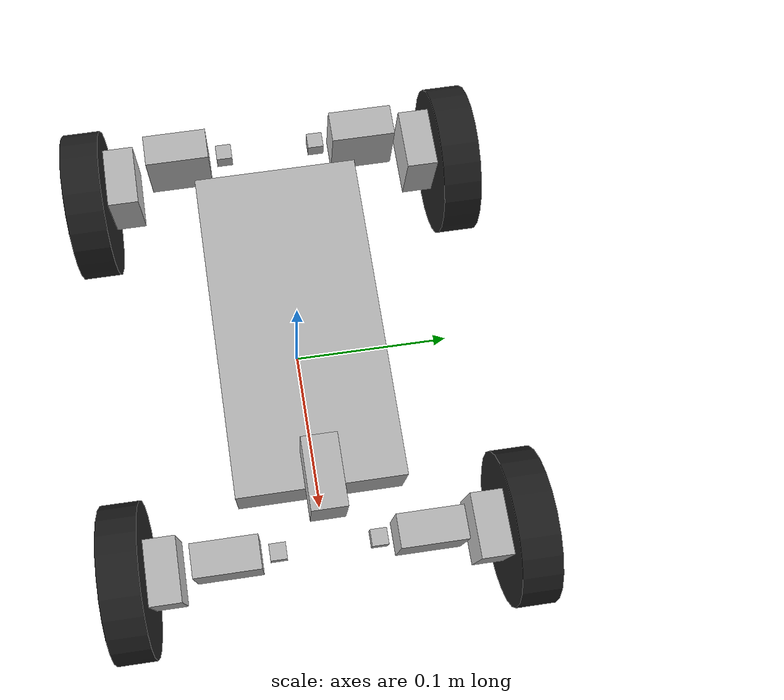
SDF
<?xml version="1.0"?>
<sdf version="1.5">
  <model name="fourlegs">
    <static>false</static>
    <self_collide>false</self_collide>
    <link name="BODY">
      <pose>0 0 0.06 0 0 0</pose>
      <inertial>
        <mass>2</mass>
        <inertia>
          <ixx>0.00194</ixx>
          <ixy>0</ixy>
          <ixz>0</ixz>
          <iyy>0.00694</iyy>
          <iyz>0</iyz>
          <izz>0.00834</izz>
        </inertia>
      </inertial>
      <collision name="collision">
        <geometry>
          <box>
            <size>0.2 0.1 0.04</size>
          </box>
        </geometry>
        <surface>
          <friction>
            <ode>
              <mu>1</mu>
              <mu2>1</mu2>
              <slip1>0</slip1>
              <slip2>0</slip2>
            </ode>
          </friction>
        </surface>
      </collision>
      <visual name="visual">
        <geometry>
          <box>
            <size>0.2 0.1 0.04</size>
          </box>
        </geometry>
      </visual>
    </link>
    <link name="NECK">
      <pose>0.1 0 0.11 0 0 0</pose>
      <inertial>
        <mass>0.2</mass>
        <inertia>
          <ixx>0.000034133</ixx>
          <ixy>0</ixy>
          <ixz>0</ixz>
          <iyy>0.000054613</iyy>
          <iyz>0</iyz>
          <izz>0.000034133</izz>
        </inertia>
      </inertial>
      <collision name="collision">
        <geometry>
          <box>
            <size>0.04 0.02 0.04</size>
          </box>
        </geometry>
        <surface>
          <friction>
            <ode>
              <mu>1</mu>
              <mu2>1</mu2>
              <slip1>0</slip1>
              <slip2>0</slip2>
            </ode>
          </friction>
        </surface>
      </collision>
      <visual name="visual">
        <geometry>
          <box>
            <size>0.04 0.02 0.04</size>
          </box>
        </geometry>
      </visual>
      <sensor type="camera" name="camera">
        <update_rate>20</update_rate>
        <visualize>false</visualize>
        <camera name="camera">
          <horizontal_fov>1.047</horizontal_fov>
          <image>
            <width>320</width>
            <height>240</height>
            <format>R8G8B8</format>
          </image>
          <clip>
            <near>0.1</near>
            <far>100</far>
          </clip>
          <!-- Noise is sampled independently per pixel on each frame.
               That pixel's noise value is added to each of its color
               channels, which at that point lie in the range [0,1]. -->
          <noise>
            <type>gaussian</type>
            <mean>0.0</mean>
            <stddev>0.007</stddev>
          </noise>
        </camera>
      </sensor>
    </link>
    <joint type="revolute" name="J_NECK">
      <pose>-0.02 0 -0.03 0 0 0</pose>
      <child>NECK</child>
      <parent>BODY</parent>
      <axis>
        <xyz>0 0 1</xyz>
        <limit>
          <lower>0</lower>
          <upper>0</upper>
        </limit>
      </axis>
    </joint>
    <link name="FR0">
      <pose>0.13 -0.03 0.05 0 0 0</pose>
      <inertial>
        <mass>0.01</mass>
        <inertia>
          <ixx>0.000000175</ixx>
          <ixy>0</ixy>
          <ixz>0</ixz>
          <iyy>0.000000175</iyy>
          <iyz>0</iyz>
          <izz>0.000000175</izz>
        </inertia>
      </inertial>
      <collision name="collision">
        <geometry>
          <box>
            <size>0.01 0.01 0.01</size>
          </box>
        </geometry>
        <surface>
          <friction>
            <ode>
              <mu>1</mu>
              <mu2>1</mu2>
              <slip1>0</slip1>
              <slip2>0</slip2>
            </ode>
          </friction>
        </surface>
      </collision>
      <visual name="visual">
        <geometry>
          <box>
            <size>0.01 0.01 0.01</size>
          </box>
        </geometry>
      </visual>
    </link>
    <joint type="revolute" name="J_FR_B20">
      <pose>0 0 0 0 0 0</pose>
      <child>FR0</child>
      <parent>BODY</parent>
      <axis>
        <xyz>-1 0 0</xyz>
      </axis>
    </joint>
    <link name="FR1">
      <pose>0.13 -0.06 0.05 0 0 0</pose>
      <inertial>
        <mass>0.2</mass>
        <inertia>
          <ixx>0.000054613</ixx>
          <ixy>0</ixy>
          <ixz>0</ixz>
          <iyy>0.000034133</iyy>
          <iyz>0</iyz>
          <izz>0.000034133</izz>
        </inertia>
      </inertial>
      <collision name="collision">
        <geometry>
          <box>
            <size>0.02 0.04 0.04</size>
          </box>
        </geometry>
        <surface>
          <friction>
            <ode>
              <mu>1</mu>
              <mu2>1</mu2>
              <slip1>0</slip1>
              <slip2>0</slip2>
            </ode>
          </friction>
        </surface>
      </collision>
      <visual name="visual">
        <geometry>
          <box>
            <size>0.02 0.04 0.04</size>
          </box>
        </geometry>
      </visual>
    </link>
    <joint type="revolute" name="J_FR_021">
      <pose>0 0.03 0 0 0 0</pose>
      <child>FR1</child>
      <parent>FR0</parent>
      <axis>
        <xyz>0 0 1</xyz>
      </axis>
    </joint>
    <link name="FR2">
      <pose>0.13 -0.1 0.02 0 0 0</pose>
      <inertial>
        <mass>0.2</mass>
        <inertia>
          <ixx>0.000034133</ixx>
          <ixy>0</ixy>
          <ixz>0</ixz>
          <iyy>0.000054613</iyy>
          <iyz>0</iyz>
          <izz>0.000034133</izz>
        </inertia>
      </inertial>
      <collision name="collision">
        <geometry>
          <box>
            <size>0.04 0.02 0.04</size>
          </box>
        </geometry>
        <surface>
          <friction>
            <ode>
              <mu>1</mu>
              <mu2>1</mu2>
              <slip1>0</slip1>
              <slip2>0</slip2>
            </ode>
          </friction>
        </surface>
      </collision>
      <visual name="visual">
        <geometry>
          <box>
            <size>0.04 0.02 0.04</size>
          </box>
        </geometry>
      </visual>
      <collision name="collision_sphere">
        <pose>0 0 -0.02 0 0 0</pose>
        <geometry>
          <sphere>
            <radius>0.01</radius>
          </sphere>
        </geometry>
        <surface>
          <friction>
            <ode>
              <mu>1</mu>
              <mu2>1</mu2>
              <slip1>0</slip1>
              <slip2>0</slip2>
            </ode>
          </friction>
        </surface>
      </collision>
      <visual name="visual_sphere">
        <pose>0 0 -0.02 0 0 0</pose>
        <geometry>
          <sphere>
            <radius>0.01</radius>
          </sphere>
        </geometry>
        <material>
          <ambient>0 0 0 1</ambient>
          <diffuse>0 0 0 1</diffuse>
          <specular>0.1 0.1 0.1 1</specular>
          <emissive>0 0 0 0</emissive>
        </material>
      </visual>
    </link>
    <joint type="revolute" name="J_FR_122">
      <pose>0 0 0.03 0 0 0</pose>
      <child>FR2</child>
      <parent>FR1</parent>
      <axis>
        <xyz>1 0 0</xyz>
      </axis>
    </joint>
    <link name="FL0">
      <pose>0.13 0.03 0.05 0 0 0</pose>
      <inertial>
        <mass>0.01</mass>
        <inertia>
          <ixx>0.000000175</ixx>
          <ixy>0</ixy>
          <ixz>0</ixz>
          <iyy>0.000000175</iyy>
          <iyz>0</iyz>
          <izz>0.000000175</izz>
        </inertia>
      </inertial>
      <collision name="collision">
        <geometry>
          <box>
            <size>0.01 0.01 0.01</size>
          </box>
        </geometry>
        <surface>
          <friction>
            <ode>
              <mu>1</mu>
              <mu2>1</mu2>
              <slip1>0</slip1>
              <slip2>0</slip2>
            </ode>
          </friction>
        </surface>
      </collision>
      <visual name="visual">
        <geometry>
          <box>
            <size>0.01 0.01 0.01</size>
          </box>
        </geometry>
      </visual>
    </link>
    <joint type="revolute" name="J_FL_B20">
      <pose>0 0 0 0 0 0</pose>
      <child>FL0</child>
      <parent>BODY</parent>
      <axis>
        <xyz>1 0 0</xyz>
      </axis>
    </joint>
    <link name="FL1">
      <pose>0.13 0.06 0.05 0 0 0</pose>
      <inertial>
        <mass>0.2</mass>
        <inertia>
          <ixx>0.000054613</ixx>
          <ixy>0</ixy>
          <ixz>0</ixz>
          <iyy>0.000034133</iyy>
          <iyz>0</iyz>
          <izz>0.000034133</izz>
        </inertia>
      </inertial>
      <collision name="collision">
        <geometry>
          <box>
            <size>0.02 0.04 0.04</size>
          </box>
        </geometry>
        <surface>
          <friction>
            <ode>
              <mu>1</mu>
              <mu2>1</mu2>
              <slip1>0</slip1>
              <slip2>0</slip2>
            </ode>
          </friction>
        </surface>
      </collision>
      <visual name="visual">
        <geometry>
          <box>
            <size>0.02 0.04 0.04</size>
          </box>
        </geometry>
      </visual>
    </link>
    <joint type="revolute" name="J_FL_021">
      <pose>0 -0.03 0 0 0 0</pose>
      <child>FL1</child>
      <parent>FL0</parent>
      <axis>
        <xyz>0 0 -1</xyz>
      </axis>
    </joint>
    <link name="FL2">
      <pose>0.13 0.1 0.02 0 0 0</pose>
      <inertial>
        <mass>0.2</mass>
        <inertia>
          <ixx>0.000034133</ixx>
          <ixy>0</ixy>
          <ixz>0</ixz>
          <iyy>0.000054613</iyy>
          <iyz>0</iyz>
          <izz>0.000034133</izz>
        </inertia>
      </inertial>
      <collision name="collision">
        <geometry>
          <box>
            <size>0.04 0.02 0.04</size>
          </box>
        </geometry>
        <surface>
          <friction>
            <ode>
              <mu>1</mu>
              <mu2>1</mu2>
              <slip1>0</slip1>
              <slip2>0</slip2>
            </ode>
          </friction>
        </surface>
      </collision>
      <visual name="visual">
        <geometry>
          <box>
            <size>0.04 0.02 0.04</size>
          </box>
        </geometry>
      </visual>
      <collision name="collision_sphere">
        <pose>0 0 -0.02 0 0 0</pose>
        <geometry>
          <sphere>
            <radius>0.01</radius>
          </sphere>
        </geometry>
        <surface>
          <friction>
            <ode>
              <mu>1</mu>
              <mu2>1</mu2>
              <slip1>0</slip1>
              <slip2>0</slip2>
            </ode>
          </friction>
        </surface>
      </collision>
      <visual name="visual_sphere">
        <pose>0 0 -0.02 0 0 0</pose>
        <geometry>
          <sphere>
            <radius>0.01</radius>
          </sphere>
        </geometry>
        <material>
          <ambient>0 0 0 1</ambient>
          <diffuse>0 0 0 1</diffuse>
          <specular>0.1 0.1 0.1 1</specular>
          <emissive>0 0 0 0</emissive>
        </material>
      </visual>
    </link>
    <joint type="revolute" name="J_FL_122">
      <pose>0 0 0.03 0 0 0</pose>
      <child>FL2</child>
      <parent>FL1</parent>
      <axis>
        <xyz>-1 0 0</xyz>
      </axis>
    </joint>
    <link name="RR0">
      <pose>-0.13 -0.03 0.05 0 0 0</pose>
      <inertial>
        <mass>0.01</mass>
        <inertia>
          <ixx>0.000000175</ixx>
          <ixy>0</ixy>
          <ixz>0</ixz>
          <iyy>0.000000175</iyy>
          <iyz>0</iyz>
          <izz>0.000000175</izz>
        </inertia>
      </inertial>
      <collision name="collision">
        <geometry>
          <box>
            <size>0.01 0.01 0.01</size>
          </box>
        </geometry>
        <surface>
          <friction>
            <ode>
              <mu>1</mu>
              <mu2>1</mu2>
              <slip1>0</slip1>
              <slip2>0</slip2>
            </ode>
          </friction>
        </surface>
      </collision>
      <visual name="visual">
        <geometry>
          <box>
            <size>0.01 0.01 0.01</size>
          </box>
        </geometry>
      </visual>
    </link>
    <joint type="revolute" name="J_RR_B20">
      <pose>0 0 0 0 0 0</pose>
      <child>RR0</child>
      <parent>BODY</parent>
      <axis>
        <xyz>-1 0 0</xyz>
      </axis>
    </joint>
    <link name="RR1">
      <pose>-0.13 -0.06 0.05 0 0 0</pose>
      <inertial>
        <mass>0.2</mass>
        <inertia>
          <ixx>0.000054613</ixx>
          <ixy>0</ixy>
          <ixz>0</ixz>
          <iyy>0.000034133</iyy>
          <iyz>0</iyz>
          <izz>0.000034133</izz>
        </inertia>
      </inertial>
      <collision name="collision">
        <geometry>
          <box>
            <size>0.02 0.04 0.04</size>
          </box>
        </geometry>
        <surface>
          <friction>
            <ode>
              <mu>1</mu>
              <mu2>1</mu2>
              <slip1>0</slip1>
              <slip2>0</slip2>
            </ode>
          </friction>
        </surface>
      </collision>
      <visual name="visual">
        <geometry>
          <box>
            <size>0.02 0.04 0.04</size>
          </box>
        </geometry>
      </visual>
    </link>
    <joint type="revolute" name="J_RR_021">
      <pose>0 0.03 0 0 0 0</pose>
      <child>RR1</child>
      <parent>RR0</parent>
      <axis>
        <xyz>0 0 -1</xyz>
      </axis>
    </joint>
    <link name="RR2">
      <pose>-0.13 -0.1 0.02 0 0 0</pose>
      <inertial>
        <mass>0.2</mass>
        <inertia>
          <ixx>0.000034133</ixx>
          <ixy>0</ixy>
          <ixz>0</ixz>
          <iyy>0.000054613</iyy>
          <iyz>0</iyz>
          <izz>0.000034133</izz>
        </inertia>
      </inertial>
      <collision name="collision">
        <geometry>
          <box>
            <size>0.04 0.02 0.04</size>
          </box>
        </geometry>
        <surface>
          <friction>
            <ode>
              <mu>1</mu>
              <mu2>1</mu2>
              <slip1>0</slip1>
              <slip2>0</slip2>
            </ode>
          </friction>
        </surface>
      </collision>
      <visual name="visual">
        <geometry>
          <box>
            <size>0.04 0.02 0.04</size>
          </box>
        </geometry>
      </visual>
      <collision name="collision_sphere">
        <pose>0 0 -0.02 0 0 0</pose>
        <geometry>
          <sphere>
            <radius>0.01</radius>
          </sphere>
        </geometry>
        <surface>
          <friction>
            <ode>
              <mu>1</mu>
              <mu2>1</mu2>
              <slip1>0</slip1>
              <slip2>0</slip2>
            </ode>
          </friction>
        </surface>
      </collision>
      <visual name="visual_sphere">
        <pose>0 0 -0.02 0 0 0</pose>
        <geometry>
          <sphere>
            <radius>0.01</radius>
          </sphere>
        </geometry>
        <material>
          <ambient>0 0 0 1</ambient>
          <diffuse>0 0 0 1</diffuse>
          <specular>0.1 0.1 0.1 1</specular>
          <emissive>0 0 0 0</emissive>
        </material>
      </visual>
    </link>
    <joint type="revolute" name="J_RR_122">
      <pose>0 0 0.03 0 0 0</pose>
      <child>RR2</child>
      <parent>RR1</parent>
      <axis>
        <xyz>1 0 0</xyz>
      </axis>
    </joint>
    <link name="RL0">
      <pose>-0.13 0.03 0.05 0 0 0</pose>
      <inertial>
        <mass>0.01</mass>
        <inertia>
          <ixx>0.000000175</ixx>
          <ixy>0</ixy>
          <ixz>0</ixz>
          <iyy>0.000000175</iyy>
          <iyz>0</iyz>
          <izz>0.000000175</izz>
        </inertia>
      </inertial>
      <collision name="collision">
        <geometry>
          <box>
            <size>0.01 0.01 0.01</size>
          </box>
        </geometry>
        <surface>
          <friction>
            <ode>
              <mu>1</mu>
              <mu2>1</mu2>
              <slip1>0</slip1>
              <slip2>0</slip2>
            </ode>
          </friction>
        </surface>
      </collision>
      <visual name="visual">
        <geometry>
          <box>
            <size>0.01 0.01 0.01</size>
          </box>
        </geometry>
      </visual>
    </link>
    <joint type="revolute" name="J_RL_B20">
      <pose>0 0 0 0 0 0</pose>
      <child>RL0</child>
      <parent>BODY</parent>
      <axis>
        <xyz>1 0 0</xyz>
      </axis>
    </joint>
    <link name="RL1">
      <pose>-0.13 0.06 0.05 0 0 0</pose>
      <inertial>
        <mass>0.2</mass>
        <inertia>
          <ixx>0.000054613</ixx>
          <ixy>0</ixy>
          <ixz>0</ixz>
          <iyy>0.000034133</iyy>
          <iyz>0</iyz>
          <izz>0.000034133</izz>
        </inertia>
      </inertial>
      <collision name="collision">
        <geometry>
          <box>
            <size>0.02 0.04 0.04</size>
          </box>
        </geometry>
        <surface>
          <friction>
            <ode>
              <mu>1</mu>
              <mu2>1</mu2>
              <slip1>0</slip1>
              <slip2>0</slip2>
            </ode>
          </friction>
        </surface>
      </collision>
      <visual name="visual">
        <geometry>
          <box>
            <size>0.02 0.04 0.04</size>
          </box>
        </geometry>
      </visual>
    </link>
    <joint type="revolute" name="J_RL_021">
      <pose>0 -0.03 0 0 0 0</pose>
      <child>RL1</child>
      <parent>RL0</parent>
      <axis>
        <xyz>0 0 1</xyz>
      </axis>
    </joint>
    <link name="RL2">
      <pose>-0.13 0.1 0.02 0 0 0</pose>
      <inertial>
        <mass>0.2</mass>
        <inertia>
          <ixx>0.000034133</ixx>
          <ixy>0</ixy>
          <ixz>0</ixz>
          <iyy>0.000054613</iyy>
          <iyz>0</iyz>
          <izz>0.000034133</izz>
        </inertia>
      </inertial>
      <collision name="collision">
        <geometry>
          <box>
            <size>0.04 0.02 0.04</size>
          </box>
        </geometry>
        <surface>
          <friction>
            <ode>
              <mu>1</mu>
              <mu2>1</mu2>
              <slip1>0</slip1>
              <slip2>0</slip2>
            </ode>
          </friction>
        </surface>
      </collision>
      <visual name="visual">
        <geometry>
          <box>
            <size>0.04 0.02 0.04</size>
          </box>
        </geometry>
      </visual>
      <collision name="collision_sphere">
        <pose>0 0 -0.02 0 0 0</pose>
        <geometry>
          <sphere>
            <radius>0.01</radius>
          </sphere>
        </geometry>
        <surface>
          <friction>
            <ode>
              <mu>1</mu>
              <mu2>1</mu2>
              <slip1>0</slip1>
              <slip2>0</slip2>
            </ode>
          </friction>
        </surface>
      </collision>
      <visual name="visual_sphere">
        <pose>0 0 -0.02 0 0 0</pose>
        <geometry>
          <sphere>
            <radius>0.01</radius>
          </sphere>
        </geometry>
        <material>
          <ambient>0 0 0 1</ambient>
          <diffuse>0 0 0 1</diffuse>
          <specular>0.1 0.1 0.1 1</specular>
          <emissive>0 0 0 0</emissive>
        </material>
      </visual>
    </link>
    <joint type="revolute" name="J_RL_122">
      <pose>0 0 0.03 0 0 0</pose>
      <child>RL2</child>
      <parent>RL1</parent>
      <axis>
        <xyz>-1 0 0</xyz>
      </axis>
    </joint>
    <link name="front_right_wheel">
      <pose>0.13 -.125 0 -1.5707 0 0</pose>
      <inertial>
        <mass>0.1</mass>
        <inertia>
          <ixx>0.00015621</ixx>
          <ixy>0</ixy>
          <ixz>0</ixz>
          <iyy>0.00015621</iyy>
          <iyz>0</iyz>
          <izz>0.00028839</izz>
        </inertia>
      </inertial>
      <collision name="collision">
        <geometry>
          <cylinder>
            <radius>0.05</radius>
            <length>0.025</length>
          </cylinder>
        </geometry>
        <surface>
          <friction>
            <ode>
              <mu>1.0</mu>
              <mu2>1.0</mu2>
            </ode>
          </friction>
        </surface>
      </collision>
      <visual name="visual">
        <geometry>
          <cylinder>
            <radius>0.05</radius>
            <length>0.025</length>
          </cylinder>
        </geometry>
        <material>
          <script>
            <uri>file://media/materials/scripts/gazebo.material</uri>
            <name>Gazebo/FlatBlack</name>
          </script>
        </material>
      </visual>
    </link>
    <joint type="revolute" name="front_right_wheel_hinge">
      <pose>0 0 0.01 0 0 0</pose>
      <child>front_right_wheel</child>
      <parent>FR2</parent>
      <axis>
        <xyz>0 0 1</xyz>
      </axis>
    </joint>
    <link name="front_left_wheel">
      <pose>0.13 .125 0 -1.5707 0 0</pose>
      <inertial>
        <mass>0.1</mass>
        <inertia>
          <ixx>0.00015621</ixx>
          <ixy>0</ixy>
          <ixz>0</ixz>
          <iyy>0.00015621</iyy>
          <iyz>0</iyz>
          <izz>0.00028839</izz>
        </inertia>
      </inertial>
      <collision name="collision">
        <geometry>
          <cylinder>
            <radius>0.05</radius>
            <length>0.025</length>
          </cylinder>
        </geometry>
        <surface>
          <friction>
            <ode>
              <mu>1.0</mu>
              <mu2>1.0</mu2>
            </ode>
          </friction>
        </surface>
      </collision>
      <visual name="visual">
        <geometry>
          <cylinder>
            <radius>0.05</radius>
            <length>0.025</length>
          </cylinder>
        </geometry>
        <material>
          <script>
            <uri>file://media/materials/scripts/gazebo.material</uri>
            <name>Gazebo/FlatBlack</name>
          </script>
        </material>
      </visual>
    </link>
    <joint type="revolute" name="front_left_wheel_hinge">
      <pose>0 0 0.01 0 0 0</pose>
      <child>front_left_wheel</child>
      <parent>FL2</parent>
      <axis>
        <xyz>0 0 1</xyz>
      </axis>
    </joint>
    <link name="rear_right_wheel">
      <pose>-0.13 -.125 0 -1.5707 0 0</pose>
      <inertial>
        <mass>0.1</mass>
        <inertia>
          <ixx>0.00015621</ixx>
          <ixy>0</ixy>
          <ixz>0</ixz>
          <iyy>0.00015621</iyy>
          <iyz>0</iyz>
          <izz>0.00028839</izz>
        </inertia>
      </inertial>
      <collision name="collision">
        <geometry>
          <cylinder>
            <radius>0.05</radius>
            <length>0.025</length>
          </cylinder>
        </geometry>
        <surface>
          <friction>
            <ode>
              <mu>1.0</mu>
              <mu2>1.0</mu2>
            </ode>
          </friction>
        </surface>
      </collision>
      <visual name="visual">
        <geometry>
          <cylinder>
            <radius>0.05</radius>
            <length>0.025</length>
          </cylinder>
        </geometry>
        <material>
          <script>
            <uri>file://media/materials/scripts/gazebo.material</uri>
            <name>Gazebo/FlatBlack</name>
          </script>
        </material>
      </visual>
    </link>
    <joint type="revolute" name="rear_right_wheel_hinge">
      <pose>0 0 0.01 0 0 0</pose>
      <child>rear_right_wheel</child>
      <parent>RR2</parent>
      <axis>
        <xyz>0 0 1</xyz>
      </axis>
    </joint>
    <link name="rear_left_wheel">
      <pose>-0.13 .125 0 -1.5707 0 0</pose>
      <inertial>
        <mass>0.1</mass>
        <inertia>
          <ixx>0.00015621</ixx>
          <ixy>0</ixy>
          <ixz>0</ixz>
          <iyy>0.00015621</iyy>
          <iyz>0</iyz>
          <izz>0.00028839</izz>
        </inertia>
      </inertial>
      <collision name="collision">
        <geometry>
          <cylinder>
            <radius>0.05</radius>
            <length>0.025</length>
          </cylinder>
        </geometry>
        <surface>
          <friction>
            <ode>
              <mu>1.0</mu>
              <mu2>1.0</mu2>
            </ode>
          </friction>
        </surface>
      </collision>
      <visual name="visual">
        <geometry>
          <cylinder>
            <radius>0.05</radius>
            <length>0.025</length>
          </cylinder>
        </geometry>
        <material>
          <script>
            <uri>file://media/materials/scripts/gazebo.material</uri>
            <name>Gazebo/FlatBlack</name>
          </script>
        </material>
      </visual>
    </link>
    <joint type="revolute" name="rear_left_wheel_hinge">
      <pose>0 0 0.01 0 0 0</pose>
      <child>rear_left_wheel</child>
      <parent>RL2</parent>
      <axis>
        <xyz>0 0 1</xyz>
      </axis>
    </joint>
    <plugin filename="libQuadrupedMotion.so" name="QuadrupedMotion">
      <J_FR_B20>J_FR_B20</J_FR_B20>
      <J_FR_021>J_FR_021</J_FR_021>
      <J_FR_122>J_FR_122</J_FR_122>
      <J_FL_B20>J_FL_B20</J_FL_B20>
      <J_FL_021>J_FL_021</J_FL_021>
      <J_FL_122>J_FL_122</J_FL_122>
      <J_RR_B20>J_RR_B20</J_RR_B20>
      <J_RR_021>J_RR_021</J_RR_021>
      <J_RR_122>J_RR_122</J_RR_122>
      <J_RL_B20>J_RL_B20</J_RL_B20>
      <J_RL_021>J_RL_021</J_RL_021>
      <J_RL_122>J_RL_122</J_RL_122>
    </plugin>
    <plugin name="SkidSteerPluginFourlegsWheeled" filename="libSkidSteerPluginFourlegsWheeled.so">
      <right_front>front_right_wheel_hinge</right_front>
      <right_rear>rear_right_wheel_hinge</right_rear>
      <left_front>front_left_wheel_hinge</left_front>
      <left_rear>rear_left_wheel_hinge</left_rear>
      <MaxForce>5.0</MaxForce>
    </plugin>
  </model>
</sdf>
